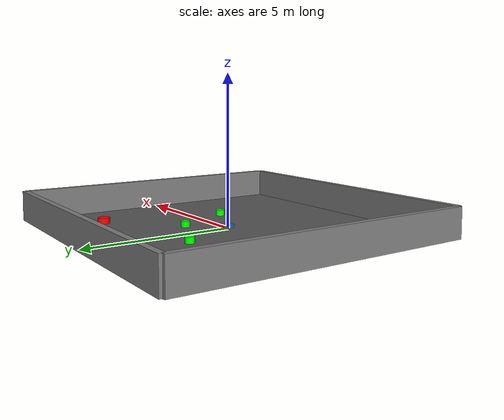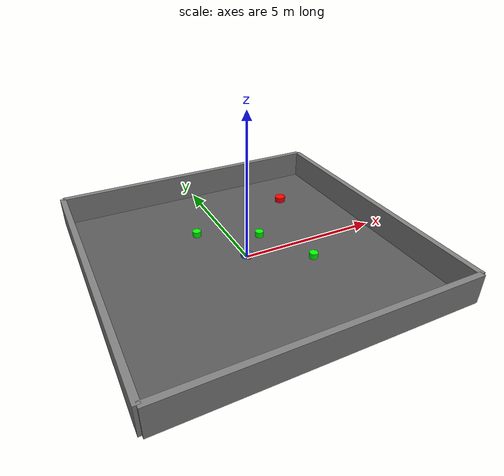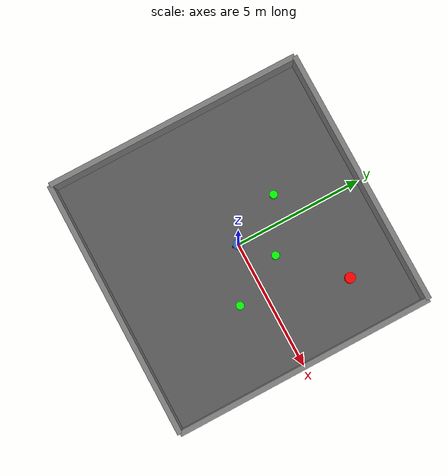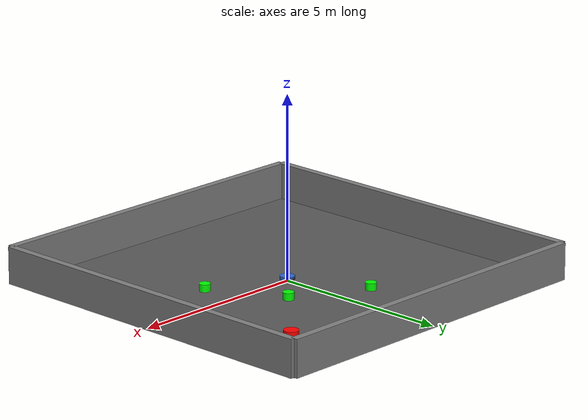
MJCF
<mujoco model="visnav_world">
  <compiler angle="radian" coordinate="local"/>
  <option timestep="0.01" gravity="0 0 -9.81"/>

  <asset>
    <texture name="floor_tex" type="2d" builtin="checker"
             rgb1="0.3 0.3 0.3" rgb2="0.4 0.4 0.4"
             width="512" height="512"/>
    <material name="floor_mat" texture="floor_tex"
              texrepeat="5 5" reflectance="0.1"/>
    <material name="robot_mat" rgba="0.2 0.4 0.8 1"/>
    <material name="goal_mat" rgba="1 0 0 1"/>
    <material name="obstacle_mat" rgba="0 1 0 1"/>
  </asset>

  <worldbody>
    <light diffuse="0.8 0.8 0.8" pos="0 0 4" dir="0 0 -1"/>
    <geom name="floor" type="plane" size="5 5 0.1"
          material="floor_mat" condim="3"/>

    <!-- Walls -->
    <geom name="wall_n" type="box" size="5 0.1 0.5"
          pos="0 5 0.5"  rgba="0.5 0.5 0.5 1"/>
    <geom name="wall_s" type="box" size="5 0.1 0.5"
          pos="0 -5 0.5" rgba="0.5 0.5 0.5 1"/>
    <geom name="wall_e" type="box" size="0.1 5 0.5"
          pos="5 0 0.5"  rgba="0.5 0.5 0.5 1"/>
    <geom name="wall_w" type="box" size="0.1 5 0.5"
          pos="-5 0 0.5" rgba="0.5 0.5 0.5 1"/>

    <!-- Robot -->
    <body name="robot" pos="0 0 0.1">
      <joint name="root_x" type="slide" axis="1 0 0"/>
      <joint name="root_y" type="slide" axis="0 1 0"/>
      <joint name="root_z" type="slide" axis="0 0 1"/>
      <joint name="root_rot" type="hinge" axis="0 0 1"/>

      <geom name="chassis" type="cylinder"
            size="0.2 0.05" material="robot_mat"/>

      <!-- Left wheel -->
      <body name="left_wheel" pos="0 0.2 0">
        <joint name="left_wheel_joint" type="hinge"
               axis="0 1 0"/>
        <geom name="left_wheel_geom" type="cylinder"
              size="0.05 0.02" rgba="0.1 0.1 0.1 1"/>
      </body>

      <!-- Right wheel -->
      <body name="right_wheel" pos="0 -0.2 0">
        <joint name="right_wheel_joint" type="hinge"
               axis="0 1 0"/>
        <geom name="right_wheel_geom" type="cylinder"
              size="0.05 0.02" rgba="0.1 0.1 0.1 1"/>
      </body>

      <!-- Camera -->
      <camera name="robot_cam" pos="0.2 0 0.05"
              fovy="60" zaxis="-1 0 0"/>

      <!-- LiDAR site -->
      <site name="lidar_site" pos="0.2 0 0.05"
            size="0.01" rgba="1 1 0 1"/>
    </body>

    <!-- Goal marker -->
    <body name="goal" pos="3 3 0.1">
      <geom name="goal_geom" type="cylinder"
            size="0.2 0.1" material="goal_mat"/>
    </body>

    <!-- Dynamic obstacles -->
    <body name="obstacle1" pos="1 1 0.1">
      <joint name="obs1_x" type="slide" axis="1 0 0"/>
      <joint name="obs1_y" type="slide" axis="0 1 0"/>
      <geom name="obs1_geom" type="cylinder"
            size="0.15 0.1" material="obstacle_mat"/>
    </body>

    <body name="obstacle2" pos="-1 2 0.1">
      <joint name="obs2_x" type="slide" axis="1 0 0"/>
      <joint name="obs2_y" type="slide" axis="0 1 0"/>
      <geom name="obs2_geom" type="cylinder"
            size="0.15 0.1" material="obstacle_mat"/>
    </body>

    <body name="obstacle3" pos="2 -1 0.1">
      <joint name="obs3_x" type="slide" axis="1 0 0"/>
      <joint name="obs3_y" type="slide" axis="0 1 0"/>
      <geom name="obs3_geom" type="cylinder"
            size="0.15 0.1" material="obstacle_mat"/>
    </body>

  </worldbody>

  <actuator>
    <velocity name="left_wheel_motor"
              joint="left_wheel_joint"
              kv="100"/>
    <velocity name="right_wheel_motor"
              joint="right_wheel_joint"
              kv="100"/>
  </actuator>

  <sensor>
    <rangefinder name="lidar_front"
                 site="lidar_site"
                 cutoff="5.0"/>
  </sensor>

</mujoco>
